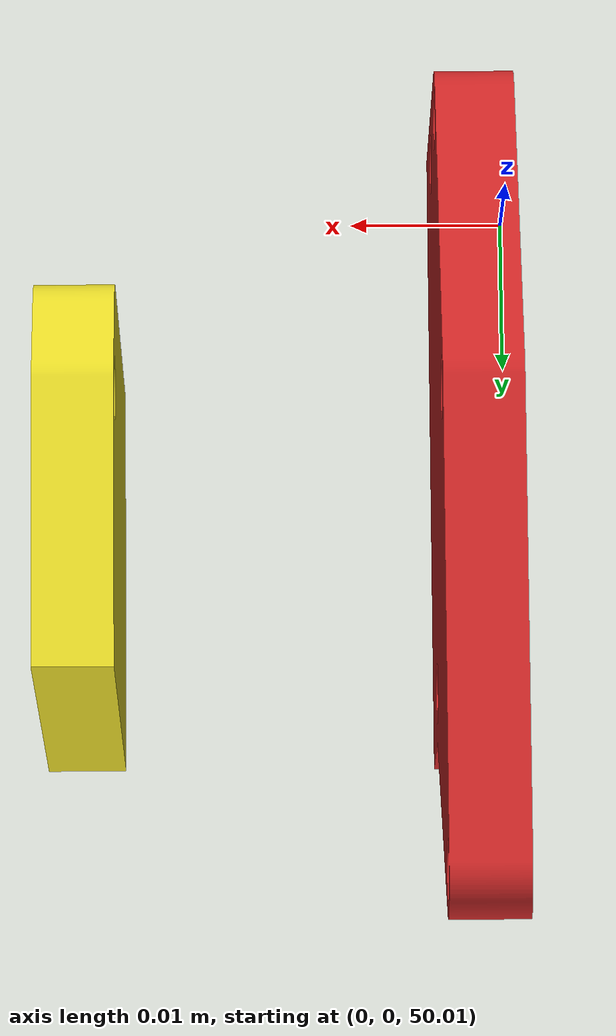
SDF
<?xml version='1.0'?>
<sdf version='1.6'>
  <model name='sliding_ver1'>

    <link name="body1">
        <inertial>
            <inertia>
                <ixx>0.0651</ixx>
                <ixy>0</ixy>
                <iyy>0.00377</iyy>
                <ixz>-0.000516</ixz>
                <izz>0.0645</izz>
                <iyz>0</iyz>
            </inertia>
            <mass>0.057</mass>
        </inertial>
        <pose>0 0 50 0 0 0</pose>
        <self_collide>1</self_collide>
        <visual name="visual">
            <geometry>
                 <mesh>
                    <uri>model://sliding_ver1/meshes/visual/body1.stl</uri>
                    <scale>0.001 0.001 0.001</scale>
                </mesh>
            </geometry>
            <material>
                <script>
                    <uri>file://media/materials/scripts/gazebo.material</uri>
                    <name>Gazebo/Red</name>
                </script>
            </material>
        </visual>
        <collision name='collision'>
            <geometry>
                 <mesh>
                    <uri>model://sliding_ver1/meshes/collision/body1.dae</uri>
                </mesh>
            </geometry>
        </collision>
    </link>

    <link name="body2">
        <inertial>
            <inertia>
                <ixx>0.0645</ixx>
                <ixy>0.000516</ixy>
                <iyy>0.0651</iyy>
                <ixz>0</ixz>
                <izz>0.00377</izz>
                <iyz>0</iyz>
            </inertia>
            <mass>0.057</mass>
        </inertial>
        <pose>0 0 50 0 0 0</pose>
        <self_collide>1</self_collide>
        <visual name="visual">
            <geometry>
                 <mesh>
                    <uri>model://sliding_ver1/meshes/visual/body2.stl</uri>
                    <scale>0.001 0.001 0.001</scale>
                </mesh>
            </geometry>
            <material>
                <script>
                    <uri>file://media/materials/scripts/gazebo.material</uri>
                    <name>Gazebo/Yellow</name>
                </script>
            </material>
        </visual>
        <collision name='collision'>
            <geometry>
                 <mesh>
                    <uri>model://sliding_ver1/meshes/collision/body2.dae</uri>
                </mesh>
            </geometry>
        </collision>
    </link>

    <link name="arm1">
        <inertial>
            <inertia>
                <ixx>0.0645</ixx>
                <ixy>0.000516</ixy>
                <iyy>0.0651</iyy>
                <ixz>0</ixz>
                <izz>0.00377</izz>
                <iyz>0</iyz>
            </inertia>
            <mass>0.057</mass>
        </inertial>
        <pose>0 0 50 0 0 0</pose>
        <self_collide>1</self_collide>
        <visual name="visual">
            <geometry>
                 <mesh>
                    <uri>model://sliding_ver1/meshes/visual/body2.stl</uri>
                    <scale>0.001 0.001 0.001</scale>
                </mesh>
            </geometry>
            <material>
                <script>
                    <uri>file://media/materials/scripts/gazebo.material</uri>
                    <name>Gazebo/Yellow</name>
                </script>
            </material>
        </visual>
        <collision name='collision'>
            <geometry>
                 <mesh>
                    <uri>model://sliding_ver1/meshes/collision/body2.dae</uri>
                </mesh>
            </geometry>
        </collision>
    </link>

    <link name="arm2">
        <inertial>
            <inertia>
                <ixx>0.0645</ixx>
                <ixy>0.000516</ixy>
                <iyy>0.0651</iyy>
                <ixz>0</ixz>
                <izz>0.00377</izz>
                <iyz>0</iyz>
            </inertia>
            <mass>0.057</mass>
        </inertial>
        <pose>0 0 50 0 0 0</pose>
        <self_collide>1</self_collide>
        <visual name="visual">
            <geometry>
                 <mesh>
                    <uri>model://sliding_ver1/meshes/visual/body2.stl</uri>
                    <scale>0.001 0.001 0.001</scale>
                </mesh>
            </geometry>
            <material>
                <script>
                    <uri>file://media/materials/scripts/gazebo.material</uri>
                    <name>Gazebo/Yellow</name>
                </script>
            </material>
        </visual>
        <collision name='collision'>
            <geometry>
                 <mesh>
                    <uri>model://sliding_ver1/meshes/collision/body2.dae</uri>
                </mesh>
            </geometry>
        </collision>
    </link>

    <link name="arm3">
        <inertial>
            <inertia>
                <ixx>0.0645</ixx>
                <ixy>0.000516</ixy>
                <iyy>0.0651</iyy>
                <ixz>0</ixz>
                <izz>0.00377</izz>
                <iyz>0</iyz>
            </inertia>
            <mass>0.057</mass>
        </inertial>
        <pose>0 0 50 0 0 0</pose>
        <self_collide>1</self_collide>
        <visual name="visual">
            <geometry>
                 <mesh>
                    <uri>model://sliding_ver1/meshes/visual/body2.stl</uri>
                    <scale>0.001 0.001 0.001</scale>
                </mesh>
            </geometry>
            <material>
                <script>
                    <uri>file://media/materials/scripts/gazebo.material</uri>
                    <name>Gazebo/Yellow</name>
                </script>
            </material>
        </visual>
        <collision name='collision'>
            <geometry>
                 <mesh>
                    <uri>model://sliding_ver1/meshes/collision/body2.dae</uri>
                </mesh>
            </geometry>
        </collision>
    </link>

    <link name="arm4">
        <inertial>
            <inertia>
                <ixx>0.0645</ixx>
                <ixy>0.000516</ixy>
                <iyy>0.0651</iyy>
                <ixz>0</ixz>
                <izz>0.00377</izz>
                <iyz>0</iyz>
            </inertia>
            <mass>0.057</mass>
        </inertial>
        <pose>0 0 50 0 0 0</pose>
        <self_collide>1</self_collide>
        <visual name="visual">
            <geometry>
                 <mesh>
                    <uri>model://sliding_ver1/meshes/visual/body2.stl</uri>
                    <scale>0.001 0.001 0.001</scale>
                </mesh>
            </geometry>
            <material>
                <script>
                    <uri>file://media/materials/scripts/gazebo.material</uri>
                    <name>Gazebo/Yellow</name>
                </script>
            </material>
        </visual>
        <collision name='collision'>
            <geometry>
                 <mesh>
                    <uri>model://sliding_ver1/meshes/collision/body2.dae</uri>
                </mesh>
            </geometry>
        </collision>
    </link>

    <link name="rack1">
        <inertial>
            <inertia>
                <ixx>0.0645</ixx>
                <ixy>0.000516</ixy>
                <iyy>0.0651</iyy>
                <ixz>0</ixz>
                <izz>0.00377</izz>
                <iyz>0</iyz>
            </inertia>
            <mass>0.057</mass>
        </inertial>
        <pose>0 0 50 0 0 0</pose>
        <self_collide>1</self_collide>
        <visual name="visual">
            <geometry>
                 <mesh>
                    <uri>model://sliding_ver1/meshes/visual/body2.stl</uri>
                    <scale>0.001 0.001 0.001</scale>
                </mesh>
            </geometry>
            <material>
                <script>
                    <uri>file://media/materials/scripts/gazebo.material</uri>
                    <name>Gazebo/Yellow</name>
                </script>
            </material>
        </visual>
        <collision name='collision'>
            <geometry>
                 <mesh>
                    <uri>model://sliding_ver1/meshes/collision/body2.dae</uri>
                </mesh>
            </geometry>
        </collision>
    </link>

    <link name="pinion">
        <inertial>
            <inertia>
                <ixx>0.0645</ixx>
                <ixy>0.000516</ixy>
                <iyy>0.0651</iyy>
                <ixz>0</ixz>
                <izz>0.00377</izz>
                <iyz>0</iyz>
            </inertia>
            <mass>0.057</mass>
        </inertial>
        <pose>0 0 50 0 0 0</pose>
        <self_collide>1</self_collide>
        <visual name="visual">
            <geometry>
                 <mesh>
                    <uri>model://sliding_ver1/meshes/visual/body2.stl</uri>
                    <scale>0.001 0.001 0.001</scale>
                </mesh>
            </geometry>
            <material>
                <script>
                    <uri>file://media/materials/scripts/gazebo.material</uri>
                    <name>Gazebo/Yellow</name>
                </script>
            </material>
        </visual>
        <collision name='collision'>
            <geometry>
                 <mesh>
                    <uri>model://sliding_ver1/meshes/collision/body2.dae</uri>
                </mesh>
            </geometry>
        </collision>
    </link>

    <link name="bevel1">
        <inertial>
            <inertia>
                <ixx>0.0645</ixx>
                <ixy>0.000516</ixy>
                <iyy>0.0651</iyy>
                <ixz>0</ixz>
                <izz>0.00377</izz>
                <iyz>0</iyz>
            </inertia>
            <mass>0.057</mass>
        </inertial>
        <pose>0 0 50 0 0 0</pose>
        <self_collide>1</self_collide>
        <visual name="visual">
            <geometry>
                 <mesh>
                    <uri>model://sliding_ver1/meshes/visual/body2.stl</uri>
                    <scale>0.001 0.001 0.001</scale>
                </mesh>
            </geometry>
            <material>
                <script>
                    <uri>file://media/materials/scripts/gazebo.material</uri>
                    <name>Gazebo/Yellow</name>
                </script>
            </material>
        </visual>
        <collision name='collision'>
            <geometry>
                 <mesh>
                    <uri>model://sliding_ver1/meshes/collision/body2.dae</uri>
                </mesh>
            </geometry>
        </collision>
    </link>

    <link name="bevel2">
        <inertial>
            <inertia>
                <ixx>0.0645</ixx>
                <ixy>0.000516</ixy>
                <iyy>0.0651</iyy>
                <ixz>0</ixz>
                <izz>0.00377</izz>
                <iyz>0</iyz>
            </inertia>
            <mass>0.057</mass>
        </inertial>
        <pose>0 0 50 0 0 0</pose>
        <self_collide>1</self_collide>
        <visual name="visual">
            <geometry>
                 <mesh>
                    <uri>model://sliding_ver1/meshes/visual/body2.stl</uri>
                    <scale>0.001 0.001 0.001</scale>
                </mesh>
            </geometry>
            <material>
                <script>
                    <uri>file://media/materials/scripts/gazebo.material</uri>
                    <name>Gazebo/Yellow</name>
                </script>
            </material>
        </visual>
        <collision name='collision'>
            <geometry>
                 <mesh>
                    <uri>model://sliding_ver1/meshes/collision/body2.dae</uri>
                </mesh>
            </geometry>
        </collision>
    </link>

    <link name="rack2">
        <inertial>
            <inertia>
                <ixx>0.0645</ixx>
                <ixy>0.000516</ixy>
                <iyy>0.0651</iyy>
                <ixz>0</ixz>
                <izz>0.00377</izz>
                <iyz>0</iyz>
            </inertia>
            <mass>0.057</mass>
        </inertial>
        <pose>0 0 50 0 0 0</pose>
        <self_collide>1</self_collide>
        <visual name="visual">
            <geometry>
                 <mesh>
                    <uri>model://sliding_ver1/meshes/visual/body2.stl</uri>
                    <scale>0.001 0.001 0.001</scale>
                </mesh>
            </geometry>
            <material>
                <script>
                    <uri>file://media/materials/scripts/gazebo.material</uri>
                    <name>Gazebo/Yellow</name>
                </script>
            </material>
        </visual>
        <collision name='collision'>
            <geometry>
                 <mesh>
                    <uri>model://sliding_ver1/meshes/collision/body2.dae</uri>
                </mesh>
            </geometry>
        </collision>
    </link>

    <link name="motor">
        <inertial>
            <inertia>
                <ixx>0.0645</ixx>
                <ixy>0.000516</ixy>
                <iyy>0.0651</iyy>
                <ixz>0</ixz>
                <izz>0.00377</izz>
                <iyz>0</iyz>
            </inertia>
            <mass>0.057</mass>
        </inertial>
        <pose>0 0 50 0 0 0</pose>
        <self_collide>1</self_collide>
        <visual name="visual">
            <geometry>
                 <mesh>
                    <uri>model://sliding_ver1/meshes/visual/body2.stl</uri>
                    <scale>0.001 0.001 0.001</scale>
                </mesh>
            </geometry>
            <material>
                <script>
                    <uri>file://media/materials/scripts/gazebo.material</uri>
                    <name>Gazebo/Yellow</name>
                </script>
            </material>
        </visual>
        <collision name='collision'>
            <geometry>
                 <mesh>
                    <uri>model://sliding_ver1/meshes/collision/body2.dae</uri>
                </mesh>
            </geometry>
        </collision>
    </link>

  </model>
</sdf>
